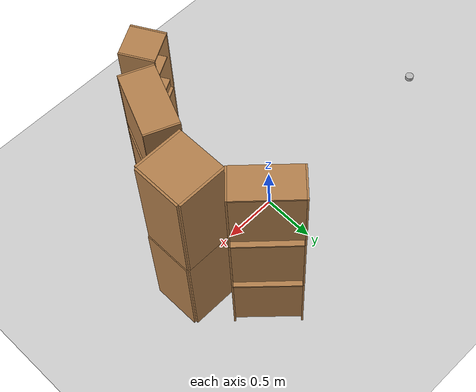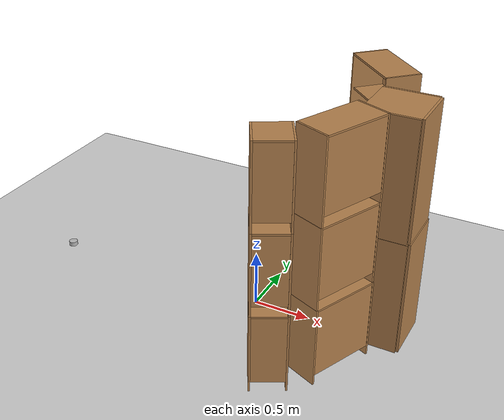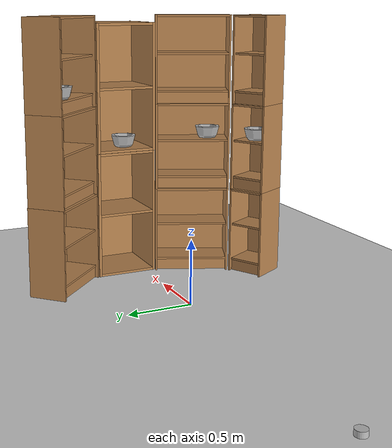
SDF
<sdf version="1.6">
 <world name="default">
  <light name="sun" type="directional">
   <pose>0 0 10 0 -0 0</pose>
   <diffuse>0.8 0.8 0.8 1</diffuse>
   <specular>0.2 0.2 0.2 1</specular>
   <attenuation>
    <range>1000</range>
    <constant>0.9</constant>
    <linear>0.01</linear>
    <quadratic>0.001</quadratic>
   </attenuation>
   <direction>-0.5 0.1 -0.9</direction>
  </light>
  <physics name="dart_1ms" default="1" type="dart">
   <max_step_size>0.001</max_step_size>
   <real_time_factor>1</real_time_factor>
   <real_time_update_rate>1000</real_time_update_rate>
   <dart><solver><solver_type>pgs</solver_type></solver></dart>
  </physics>
  <physics name="dart_2ms" default="0" type="dart">
   <max_step_size>0.002</max_step_size>
   <real_time_factor>1</real_time_factor>
   <real_time_update_rate>500</real_time_update_rate>
   <dart><solver><solver_type>pgs</solver_type></solver></dart>
  </physics>
  <physics name="dart_3ms" default="0" type="dart">
   <max_step_size>0.003</max_step_size>
   <real_time_factor>1</real_time_factor>
   <real_time_update_rate>333</real_time_update_rate>
   <dart><solver><solver_type>pgs</solver_type></solver></dart>
  </physics>
  <physics name="ode_1ms" default="0" type="ode">
   <max_step_size>0.001</max_step_size>
   <real_time_factor>1</real_time_factor>
   <real_time_update_rate>1000</real_time_update_rate>
  </physics>
  <physics name="ode_2ms" default="0" type="ode">
   <max_step_size>0.002</max_step_size>
   <real_time_factor>1</real_time_factor>
   <real_time_update_rate>500</real_time_update_rate>
  </physics>
  <physics name="ode_3ms" default="0" type="ode">
   <max_step_size>0.003</max_step_size>
   <real_time_factor>1</real_time_factor>
   <real_time_update_rate>333</real_time_update_rate>
  </physics>
  <model name="ground_plane">
   <static>1</static>
   <link name="link">
    <collision name="collision">
     <geometry><plane><normal>0 0 1</normal><size>100 100</size></plane></geometry>
     <surface><friction><ode><mu>100</mu><mu2>50</mu2></ode></friction></surface>
    </collision>
    <visual name="visual">
     <cast_shadows>0</cast_shadows>
     <geometry><plane><normal>0 0 1</normal><size>100 100</size></plane></geometry>
     <material>
      <script><uri>file://media/materials/scripts/gazebo.material</uri><name>Gazebo/Grey</name></script>
     </material>
    </visual>
   </link>
  </model>
  <gravity>0 0 -9.8</gravity>
  <magnetic_field>6e-06 2.3e-05 -4.2e-05</magnetic_field>
  <atmosphere type="adiabatic"/>
  <scene><ambient>0.4 0.4 0.4 1</ambient><background>0.7 0.7 0.7 1</background><shadows>1</shadows></scene>
  <spherical_coordinates>
   <surface_model>EARTH_WGS84</surface_model>
   <latitude_deg>0</latitude_deg>
   <longitude_deg>0</longitude_deg>
   <elevation>0</elevation>
   <heading_deg>0</heading_deg>
  </spherical_coordinates>
  <model name="jar_lid">
   <link name="link">
    <inertial>
     <mass>0.04</mass>
     <inertia><ixx>0.00015</ixx><ixy>0</ixy><ixz>0</ixz><iyy>0.00015</iyy><iyz>0</iyz><izz>5e-05</izz></inertia>
    </inertial>
    <collision name="surface">
     <geometry><cylinder><radius>0.04</radius><length>0.04</length></cylinder></geometry>
    </collision>
    <visual name="surface">
     <geometry><cylinder><radius>0.04</radius><length>0.04</length></cylinder></geometry>
    </visual>
   </link>
   <pose>-2 1e-06 0.019995 1.2e-05 1.2e-05 -4.3e-05</pose>
  </model>
  <model name="cabinet">
   <static>1</static>
   <link name="cabinet_bottom_plate">
    <inertial>
     <pose>0 0 -1 0 -0 0</pose>
     <inertia><ixx>2.05</ixx><ixy>0</ixy><ixz>0</ixz><iyy>2.05</iyy><iyz>0</iyz><izz>2.05</izz></inertia>
     <mass>25</mass>
    </inertial>
    <collision name="cabinet_bottom_plate_geom">
     <pose>0 0 0.01 0 -0 0</pose>
     <geometry><box><size>0.45 0.45 0.02</size></box></geometry>
    </collision>
    <visual name="cabinet_bottom_plate_geom_visual">
     <pose>0 0 0.01 0 -0 0</pose>
     <geometry><box><size>0.45 0.45 0.02</size></box></geometry>
     <material>
      <script><uri>file://media/materials/scripts/gazebo.material</uri><name>Gazebo/Wood</name></script>
     </material>
    </visual>
    <collision name="cabinet_bottom_plate_geom_cabinet_back_plate">
     <pose>0.235 0 0.51 0 -0 0</pose>
     <geometry><box><size>0.02 0.45 1.02</size></box></geometry>
    </collision>
    <visual name="cabinet_bottom_plate_geom_cabinet_back_plate_visual">
     <pose>0.235 0 0.51 0 -0 0</pose>
     <geometry><box><size>0.02 0.45 1.02</size></box></geometry>
     <material>
      <script><uri>file://media/materials/scripts/gazebo.material</uri><name>Gazebo/Wood</name></script>
     </material>
    </visual>
    <collision name="cabinet_bottom_plate_geom_cabinet_left_plate">
     <pose>0 0.235 0.51 0 -0 0</pose>
     <geometry><box><size>0.45 0.02 1.02</size></box></geometry>
    </collision>
    <visual name="cabinet_bottom_plate_geom_cabinet_left_plate_visual">
     <pose>0 0.235 0.51 0 -0 0</pose>
     <geometry><box><size>0.45 0.02 1.02</size></box></geometry>
     <material>
      <script><uri>file://media/materials/scripts/gazebo.material</uri><name>Gazebo/Wood</name></script>
     </material>
    </visual>
    <collision name="cabinet_bottom_plate_geom_cabinet_middle_plate">
     <pose>0 0 0.51 0 -0 0</pose>
     <geometry><box><size>0.45 0.45 0.02</size></box></geometry>
    </collision>
    <visual name="cabinet_bottom_plate_geom_cabinet_middle_plate_visual">
     <pose>0 0 0.51 0 -0 0</pose>
     <geometry><box><size>0.45 0.45 0.02</size></box></geometry>
     <material>
      <script><uri>file://media/materials/scripts/gazebo.material</uri><name>Gazebo/Wood</name></script>
     </material>
    </visual>
    <collision name="cabinet_bottom_plate_geom_cabinet_right_plate">
     <pose>0 -0.235 0.51 0 -0 0</pose>
     <geometry><box><size>0.45 0.02 1.02</size></box></geometry>
    </collision>
    <visual name="cabinet_bottom_plate_geom_cabinet_right_plate_visual">
     <pose>0 -0.235 0.51 0 -0 0</pose>
     <geometry><box><size>0.45 0.02 1.02</size></box></geometry>
     <material>
      <script><uri>file://media/materials/scripts/gazebo.material</uri><name>Gazebo/Wood</name></script>
     </material>
    </visual>
    <collision name="cabinet_bottom_plate_geom_cabinet_top_plate">
     <pose>0 0 1.01 0 -0 0</pose>
     <geometry><box><size>0.45 0.45 0.02</size></box></geometry>
    </collision>
    <visual name="cabinet_bottom_plate_geom_cabinet_top_plate_visual">
     <pose>0 0 1.01 0 -0 0</pose>
     <geometry><box><size>0.45 0.45 0.02</size></box></geometry>
     <material>
      <script><uri>file://media/materials/scripts/gazebo.material</uri><name>Gazebo/Wood</name></script>
     </material>
    </visual>
   </link>
   <pose>1.07844 0.162029 0 0 -0 0</pose>
  </model>
  <model name="cabinet_no_door_narrow">
   <static>1</static>
   <link name="cabinet">
    <pose>0 0 0.35 0 -0 0</pose>
    <inertial>
     <mass>16</mass>
     <inertia><ixx>1.59</ixx><ixy>0</ixy><ixz>0</ixz><iyy>1.12</iyy><iyz>0</iyz><izz>0.91</izz></inertia>
    </inertial>
    <collision name="back">
     <pose>-0.14 0 0.035 0 -0 0</pose>
     <geometry><box><size>0.015 0.285 0.6</size></box></geometry>
    </collision>
    <visual name="visual1">
     <pose>-0.14 0 0.035 0 -0 0</pose>
     <geometry><box><size>0.015 0.285 0.6</size></box></geometry>
     <material>
      <script><uri>file://media/materials/scripts/gazebo.material</uri><name>Gazebo/Wood</name></script>
     </material>
    </visual>
    <collision name="left_side">
     <pose>0 -0.1425 0 0 -0 0</pose>
     <geometry><box><size>0.3 0.015 0.7</size></box></geometry>
    </collision>
    <visual name="visual2">
     <pose>0 -0.1425 0 0 -0 0</pose>
     <geometry><box><size>0.3 0.015 0.7</size></box></geometry>
     <material>
      <script><uri>file://media/materials/scripts/gazebo.material</uri><name>Gazebo/Wood</name></script>
     </material>
    </visual>
    <collision name="right_side">
     <pose>0 0.1425 0 0 -0 0</pose>
     <geometry><box><size>0.3 0.015 0.7</size></box></geometry>
    </collision>
    <visual name="visual3">
     <pose>0 0.1425 0 0 -0 0</pose>
     <geometry><box><size>0.3 0.015 0.7</size></box></geometry>
     <material>
      <script><uri>file://media/materials/scripts/gazebo.material</uri><name>Gazebo/Wood</name></script>
     </material>
    </visual>
    <collision name="bottom">
     <pose>-0.002 0 -0.2525 0 -0 0</pose>
     <geometry><box><size>0.26 0.27 0.015</size></box></geometry>
    </collision>
    <visual name="visual4">
     <pose>-0.002 0 -0.2525 0 -0 0</pose>
     <geometry><box><size>0.26 0.27 0.015</size></box></geometry>
     <material>
      <script><uri>file://media/materials/scripts/gazebo.material</uri><name>Gazebo/Wood</name></script>
     </material>
    </visual>
    <collision name="top">
     <pose>0 0 0.3425 0 -0 0</pose>
     <geometry><box><size>0.3 0.27 0.015</size></box></geometry>
    </collision>
    <visual name="visual5">
     <pose>0 0 0.3425 0 -0 0</pose>
     <geometry><box><size>0.3 0.27 0.015</size></box></geometry>
     <material>
      <script><uri>file://media/materials/scripts/gazebo.material</uri><name>Gazebo/Wood</name></script>
     </material>
    </visual>
    <collision name="middle_shelf">
     <pose>-0.002 0 0.0475 0 -0 0</pose>
     <geometry><box><size>0.26 0.27 0.015</size></box></geometry>
    </collision>
    <visual name="visual6">
     <pose>-0.002 0 0.0475 0 -0 0</pose>
     <geometry><box><size>0.26 0.27 0.015</size></box></geometry>
     <material>
      <script><uri>file://media/materials/scripts/gazebo.material</uri><name>Gazebo/Wood</name></script>
     </material>
    </visual>
    <collision name="low_front">
     <pose>0.115 0 -0.3025 0 -0 0</pose>
     <geometry><box><size>0.015 0.27 0.09</size></box></geometry>
    </collision>
    <visual name="visual7">
     <pose>0.115 0 -0.3025 0 -0 0</pose>
     <geometry><box><size>0.015 0.27 0.09</size></box></geometry>
     <material>
      <script><uri>file://media/materials/scripts/gazebo.material</uri><name>Gazebo/Wood</name></script>
     </material>
    </visual>
   </link>
   <pose>0.528097 -0.841149 1e-06 -6e-06 4e-06 2.07278</pose>
  </model>
  <model name="cabinet_no_door_0">
   <static>1</static>
   <link name="cabinet">
    <pose>0 0 0.35 0 -0 0</pose>
    <inertial>
     <mass>16</mass>
     <inertia><ixx>1.59</ixx><ixy>0</ixy><ixz>0</ixz><iyy>1.12</iyy><iyz>0</iyz><izz>0.91</izz></inertia>
    </inertial>
    <collision name="back">
     <pose>-0.14 0 0.035 0 -0 0</pose>
     <geometry><box><size>0.015 0.585 0.6</size></box></geometry>
    </collision>
    <visual name="visual1">
     <pose>-0.14 0 0.035 0 -0 0</pose>
     <geometry><box><size>0.015 0.585 0.6</size></box></geometry>
     <material>
      <script><uri>file://media/materials/scripts/gazebo.material</uri><name>Gazebo/Wood</name></script>
     </material>
    </visual>
    <collision name="left_side">
     <pose>0 -0.2925 0 0 -0 0</pose>
     <geometry><box><size>0.3 0.015 0.7</size></box></geometry>
    </collision>
    <visual name="visual2">
     <pose>0 -0.2925 0 0 -0 0</pose>
     <geometry><box><size>0.3 0.015 0.7</size></box></geometry>
     <material>
      <script><uri>file://media/materials/scripts/gazebo.material</uri><name>Gazebo/Wood</name></script>
     </material>
    </visual>
    <collision name="right_side">
     <pose>0 0.2925 0 0 -0 0</pose>
     <geometry><box><size>0.3 0.015 0.7</size></box></geometry>
    </collision>
    <visual name="visual3">
     <pose>0 0.2925 0 0 -0 0</pose>
     <geometry><box><size>0.3 0.015 0.7</size></box></geometry>
     <material>
      <script><uri>file://media/materials/scripts/gazebo.material</uri><name>Gazebo/Wood</name></script>
     </material>
    </visual>
    <collision name="bottom">
     <pose>-0.002 0 -0.2525 0 -0 0</pose>
     <geometry><box><size>0.26 0.57 0.015</size></box></geometry>
    </collision>
    <visual name="visual4">
     <pose>-0.002 0 -0.2525 0 -0 0</pose>
     <geometry><box><size>0.26 0.57 0.015</size></box></geometry>
     <material>
      <script><uri>file://media/materials/scripts/gazebo.material</uri><name>Gazebo/Wood</name></script>
     </material>
    </visual>
    <collision name="top">
     <pose>0 0 0.3425 0 -0 0</pose>
     <geometry><box><size>0.3 0.57 0.015</size></box></geometry>
    </collision>
    <visual name="visual5">
     <pose>0 0 0.3425 0 -0 0</pose>
     <geometry><box><size>0.3 0.57 0.015</size></box></geometry>
     <material>
      <script><uri>file://media/materials/scripts/gazebo.material</uri><name>Gazebo/Wood</name></script>
     </material>
    </visual>
    <collision name="middle_shelf">
     <pose>-0.002 0 0.0475 0 -0 0</pose>
     <geometry><box><size>0.26 0.57 0.015</size></box></geometry>
    </collision>
    <visual name="visual6">
     <pose>-0.002 0 0.0475 0 -0 0</pose>
     <geometry><box><size>0.26 0.57 0.015</size></box></geometry>
     <material>
      <script><uri>file://media/materials/scripts/gazebo.material</uri><name>Gazebo/Wood</name></script>
     </material>
    </visual>
    <collision name="low_front">
     <pose>0.115 0 -0.3025 0 -0 0</pose>
     <geometry><box><size>0.015 0.57 0.09</size></box></geometry>
    </collision>
    <visual name="visual7">
     <pose>0.115 0 -0.3025 0 -0 0</pose>
     <geometry><box><size>0.015 0.57 0.09</size></box></geometry>
     <material>
      <script><uri>file://media/materials/scripts/gazebo.material</uri><name>Gazebo/Wood</name></script>
     </material>
    </visual>
   </link>
   <pose>0.752417 0.729343 -5e-06 -1e-06 -2.9e-05 -2.34966</pose>
  </model>
  <model name="cabinet_no_door">
   <static>1</static>
   <link name="cabinet">
    <pose>0 0 0.35 0 -0 0</pose>
    <inertial>
     <mass>16</mass>
     <inertia><ixx>1.59</ixx><ixy>0</ixy><ixz>0</ixz><iyy>1.12</iyy><iyz>0</iyz><izz>0.91</izz></inertia>
    </inertial>
    <collision name="back">
     <pose>-0.14 0 0.035 0 -0 0</pose>
     <geometry><box><size>0.015 0.585 0.6</size></box></geometry>
    </collision>
    <visual name="visual1">
     <pose>-0.14 0 0.035 0 -0 0</pose>
     <geometry><box><size>0.015 0.585 0.6</size></box></geometry>
     <material>
      <script><uri>file://media/materials/scripts/gazebo.material</uri><name>Gazebo/Wood</name></script>
     </material>
    </visual>
    <collision name="left_side">
     <pose>0 -0.2925 0 0 -0 0</pose>
     <geometry><box><size>0.3 0.015 0.7</size></box></geometry>
    </collision>
    <visual name="visual2">
     <pose>0 -0.2925 0 0 -0 0</pose>
     <geometry><box><size>0.3 0.015 0.7</size></box></geometry>
     <material>
      <script><uri>file://media/materials/scripts/gazebo.material</uri><name>Gazebo/Wood</name></script>
     </material>
    </visual>
    <collision name="right_side">
     <pose>0 0.2925 0 0 -0 0</pose>
     <geometry><box><size>0.3 0.015 0.7</size></box></geometry>
    </collision>
    <visual name="visual3">
     <pose>0 0.2925 0 0 -0 0</pose>
     <geometry><box><size>0.3 0.015 0.7</size></box></geometry>
     <material>
      <script><uri>file://media/materials/scripts/gazebo.material</uri><name>Gazebo/Wood</name></script>
     </material>
    </visual>
    <collision name="bottom">
     <pose>-0.002 0 -0.2525 0 -0 0</pose>
     <geometry><box><size>0.26 0.57 0.015</size></box></geometry>
    </collision>
    <visual name="visual4">
     <pose>-0.002 0 -0.2525 0 -0 0</pose>
     <geometry><box><size>0.26 0.57 0.015</size></box></geometry>
     <material>
      <script><uri>file://media/materials/scripts/gazebo.material</uri><name>Gazebo/Wood</name></script>
     </material>
    </visual>
    <collision name="top">
     <pose>0 0 0.3425 0 -0 0</pose>
     <geometry><box><size>0.3 0.57 0.015</size></box></geometry>
    </collision>
    <visual name="visual5">
     <pose>0 0 0.3425 0 -0 0</pose>
     <geometry><box><size>0.3 0.57 0.015</size></box></geometry>
     <material>
      <script><uri>file://media/materials/scripts/gazebo.material</uri><name>Gazebo/Wood</name></script>
     </material>
    </visual>
    <collision name="middle_shelf">
     <pose>-0.002 0 0.0475 0 -0 0</pose>
     <geometry><box><size>0.26 0.57 0.015</size></box></geometry>
    </collision>
    <visual name="visual6">
     <pose>-0.002 0 0.0475 0 -0 0</pose>
     <geometry><box><size>0.26 0.57 0.015</size></box></geometry>
     <material>
      <script><uri>file://media/materials/scripts/gazebo.material</uri><name>Gazebo/Wood</name></script>
     </material>
    </visual>
    <collision name="low_front">
     <pose>0.115 0 -0.3025 0 -0 0</pose>
     <geometry><box><size>0.015 0.57 0.09</size></box></geometry>
    </collision>
    <visual name="visual7">
     <pose>0.115 0 -0.3025 0 -0 0</pose>
     <geometry><box><size>0.015 0.57 0.09</size></box></geometry>
     <material>
      <script><uri>file://media/materials/scripts/gazebo.material</uri><name>Gazebo/Wood</name></script>
     </material>
    </visual>
   </link>
   <pose>0.751373 0.728135 0.69999 1e-05 1.1e-05 -2.34054</pose>
  </model>
  <model name="cabinet_no_door_1">
   <static>1</static>
   <link name="cabinet">
    <pose>0 0 0.35 0 -0 0</pose>
    <inertial>
     <mass>16</mass>
     <inertia><ixx>1.59</ixx><ixy>0</ixy><ixz>0</ixz><iyy>1.12</iyy><iyz>0</iyz><izz>0.91</izz></inertia>
    </inertial>
    <collision name="back">
     <pose>-0.14 0 0.035 0 -0 0</pose>
     <geometry><box><size>0.015 0.585 0.6</size></box></geometry>
    </collision>
    <visual name="visual1">
     <pose>-0.14 0 0.035 0 -0 0</pose>
     <geometry><box><size>0.015 0.585 0.6</size></box></geometry>
     <material>
      <script><uri>file://media/materials/scripts/gazebo.material</uri><name>Gazebo/Wood</name></script>
     </material>
    </visual>
    <collision name="left_side">
     <pose>0 -0.2925 0 0 -0 0</pose>
     <geometry><box><size>0.3 0.015 0.7</size></box></geometry>
    </collision>
    <visual name="visual2">
     <pose>0 -0.2925 0 0 -0 0</pose>
     <geometry><box><size>0.3 0.015 0.7</size></box></geometry>
     <material>
      <script><uri>file://media/materials/scripts/gazebo.material</uri><name>Gazebo/Wood</name></script>
     </material>
    </visual>
    <collision name="right_side">
     <pose>0 0.2925 0 0 -0 0</pose>
     <geometry><box><size>0.3 0.015 0.7</size></box></geometry>
    </collision>
    <visual name="visual3">
     <pose>0 0.2925 0 0 -0 0</pose>
     <geometry><box><size>0.3 0.015 0.7</size></box></geometry>
     <material>
      <script><uri>file://media/materials/scripts/gazebo.material</uri><name>Gazebo/Wood</name></script>
     </material>
    </visual>
    <collision name="bottom">
     <pose>-0.002 0 -0.2525 0 -0 0</pose>
     <geometry><box><size>0.26 0.57 0.015</size></box></geometry>
    </collision>
    <visual name="visual4">
     <pose>-0.002 0 -0.2525 0 -0 0</pose>
     <geometry><box><size>0.26 0.57 0.015</size></box></geometry>
     <material>
      <script><uri>file://media/materials/scripts/gazebo.material</uri><name>Gazebo/Wood</name></script>
     </material>
    </visual>
    <collision name="top">
     <pose>0 0 0.3425 0 -0 0</pose>
     <geometry><box><size>0.3 0.57 0.015</size></box></geometry>
    </collision>
    <visual name="visual5">
     <pose>0 0 0.3425 0 -0 0</pose>
     <geometry><box><size>0.3 0.57 0.015</size></box></geometry>
     <material>
      <script><uri>file://media/materials/scripts/gazebo.material</uri><name>Gazebo/Wood</name></script>
     </material>
    </visual>
    <collision name="middle_shelf">
     <pose>-0.002 0 0.0475 0 -0 0</pose>
     <geometry><box><size>0.26 0.57 0.015</size></box></geometry>
    </collision>
    <visual name="visual6">
     <pose>-0.002 0 0.0475 0 -0 0</pose>
     <geometry><box><size>0.26 0.57 0.015</size></box></geometry>
     <material>
      <script><uri>file://media/materials/scripts/gazebo.material</uri><name>Gazebo/Wood</name></script>
     </material>
    </visual>
    <collision name="low_front">
     <pose>0.115 0 -0.3025 0 -0 0</pose>
     <geometry><box><size>0.015 0.57 0.09</size></box></geometry>
    </collision>
    <visual name="visual7">
     <pose>0.115 0 -0.3025 0 -0 0</pose>
     <geometry><box><size>0.015 0.57 0.09</size></box></geometry>
     <material>
      <script><uri>file://media/materials/scripts/gazebo.material</uri><name>Gazebo/Wood</name></script>
     </material>
    </visual>
   </link>
   <pose>0.85236 -0.413155 -4e-06 -1.7e-05 -5e-06 2.74167</pose>
  </model>
  <model name="cabinet_clone">
   <static>1</static>
   <link name="cabinet_bottom_plate">
    <inertial>
     <pose>0 0 -1 0 -0 0</pose>
     <inertia><ixx>2.05</ixx><ixy>0</ixy><ixz>0</ixz><iyy>2.05</iyy><iyz>0</iyz><izz>2.05</izz></inertia>
     <mass>25</mass>
    </inertial>
    <collision name="cabinet_bottom_plate_geom">
     <pose>0 0 0.01 0 -0 0</pose>
     <geometry><box><size>0.45 0.45 0.02</size></box></geometry>
    </collision>
    <visual name="cabinet_bottom_plate_geom_visual">
     <pose>0 0 0.01 0 -0 0</pose>
     <geometry><box><size>0.45 0.45 0.02</size></box></geometry>
     <material>
      <script><uri>file://media/materials/scripts/gazebo.material</uri><name>Gazebo/Wood</name></script>
     </material>
    </visual>
    <collision name="cabinet_bottom_plate_geom_cabinet_back_plate">
     <pose>0.235 0 0.51 0 -0 0</pose>
     <geometry><box><size>0.02 0.45 1.02</size></box></geometry>
    </collision>
    <visual name="cabinet_bottom_plate_geom_cabinet_back_plate_visual">
     <pose>0.235 0 0.51 0 -0 0</pose>
     <geometry><box><size>0.02 0.45 1.02</size></box></geometry>
     <material>
      <script><uri>file://media/materials/scripts/gazebo.material</uri><name>Gazebo/Wood</name></script>
     </material>
    </visual>
    <collision name="cabinet_bottom_plate_geom_cabinet_left_plate">
     <pose>0 0.235 0.51 0 -0 0</pose>
     <geometry><box><size>0.45 0.02 1.02</size></box></geometry>
    </collision>
    <visual name="cabinet_bottom_plate_geom_cabinet_left_plate_visual">
     <pose>0 0.235 0.51 0 -0 0</pose>
     <geometry><box><size>0.45 0.02 1.02</size></box></geometry>
     <material>
      <script><uri>file://media/materials/scripts/gazebo.material</uri><name>Gazebo/Wood</name></script>
     </material>
    </visual>
    <collision name="cabinet_bottom_plate_geom_cabinet_middle_plate">
     <pose>0 0 0.51 0 -0 0</pose>
     <geometry><box><size>0.45 0.45 0.02</size></box></geometry>
    </collision>
    <visual name="cabinet_bottom_plate_geom_cabinet_middle_plate_visual">
     <pose>0 0 0.51 0 -0 0</pose>
     <geometry><box><size>0.45 0.45 0.02</size></box></geometry>
     <material>
      <script><uri>file://media/materials/scripts/gazebo.material</uri><name>Gazebo/Wood</name></script>
     </material>
    </visual>
    <collision name="cabinet_bottom_plate_geom_cabinet_right_plate">
     <pose>0 -0.235 0.51 0 -0 0</pose>
     <geometry><box><size>0.45 0.02 1.02</size></box></geometry>
    </collision>
    <visual name="cabinet_bottom_plate_geom_cabinet_right_plate_visual">
     <pose>0 -0.235 0.51 0 -0 0</pose>
     <geometry><box><size>0.45 0.02 1.02</size></box></geometry>
     <material>
      <script><uri>file://media/materials/scripts/gazebo.material</uri><name>Gazebo/Wood</name></script>
     </material>
    </visual>
    <collision name="cabinet_bottom_plate_geom_cabinet_top_plate">
     <pose>0 0 1.01 0 -0 0</pose>
     <geometry><box><size>0.45 0.45 0.02</size></box></geometry>
    </collision>
    <visual name="cabinet_bottom_plate_geom_cabinet_top_plate_visual">
     <pose>0 0 1.01 0 -0 0</pose>
     <geometry><box><size>0.45 0.45 0.02</size></box></geometry>
     <material>
      <script><uri>file://media/materials/scripts/gazebo.material</uri><name>Gazebo/Wood</name></script>
     </material>
    </visual>
   </link>
   <pose>1.07061 0.162616 1.02209 0 -0 0</pose>
  </model>
  <model name="cabinet_no_door_1_clone">
   <static>1</static>
   <link name="cabinet">
    <pose>0 0 0.35 0 -0 0</pose>
    <inertial>
     <mass>16</mass>
     <inertia><ixx>1.59</ixx><ixy>0</ixy><ixz>0</ixz><iyy>1.12</iyy><iyz>0</iyz><izz>0.91</izz></inertia>
    </inertial>
    <collision name="back">
     <pose>-0.14 0 0.035 0 -0 0</pose>
     <geometry><box><size>0.015 0.585 0.6</size></box></geometry>
    </collision>
    <visual name="visual1">
     <pose>-0.14 0 0.035 0 -0 0</pose>
     <geometry><box><size>0.015 0.585 0.6</size></box></geometry>
     <material>
      <script><uri>file://media/materials/scripts/gazebo.material</uri><name>Gazebo/Wood</name></script>
     </material>
    </visual>
    <collision name="left_side">
     <pose>0 -0.2925 0 0 -0 0</pose>
     <geometry><box><size>0.3 0.015 0.7</size></box></geometry>
    </collision>
    <visual name="visual2">
     <pose>0 -0.2925 0 0 -0 0</pose>
     <geometry><box><size>0.3 0.015 0.7</size></box></geometry>
     <material>
      <script><uri>file://media/materials/scripts/gazebo.material</uri><name>Gazebo/Wood</name></script>
     </material>
    </visual>
    <collision name="right_side">
     <pose>0 0.2925 0 0 -0 0</pose>
     <geometry><box><size>0.3 0.015 0.7</size></box></geometry>
    </collision>
    <visual name="visual3">
     <pose>0 0.2925 0 0 -0 0</pose>
     <geometry><box><size>0.3 0.015 0.7</size></box></geometry>
     <material>
      <script><uri>file://media/materials/scripts/gazebo.material</uri><name>Gazebo/Wood</name></script>
     </material>
    </visual>
    <collision name="bottom">
     <pose>-0.002 0 -0.2525 0 -0 0</pose>
     <geometry><box><size>0.26 0.57 0.015</size></box></geometry>
    </collision>
    <visual name="visual4">
     <pose>-0.002 0 -0.2525 0 -0 0</pose>
     <geometry><box><size>0.26 0.57 0.015</size></box></geometry>
     <material>
      <script><uri>file://media/materials/scripts/gazebo.material</uri><name>Gazebo/Wood</name></script>
     </material>
    </visual>
    <collision name="top">
     <pose>0 0 0.3425 0 -0 0</pose>
     <geometry><box><size>0.3 0.57 0.015</size></box></geometry>
    </collision>
    <visual name="visual5">
     <pose>0 0 0.3425 0 -0 0</pose>
     <geometry><box><size>0.3 0.57 0.015</size></box></geometry>
     <material>
      <script><uri>file://media/materials/scripts/gazebo.material</uri><name>Gazebo/Wood</name></script>
     </material>
    </visual>
    <collision name="middle_shelf">
     <pose>-0.002 0 0.0475 0 -0 0</pose>
     <geometry><box><size>0.26 0.57 0.015</size></box></geometry>
    </collision>
    <visual name="visual6">
     <pose>-0.002 0 0.0475 0 -0 0</pose>
     <geometry><box><size>0.26 0.57 0.015</size></box></geometry>
     <material>
      <script><uri>file://media/materials/scripts/gazebo.material</uri><name>Gazebo/Wood</name></script>
     </material>
    </visual>
    <collision name="low_front">
     <pose>0.115 0 -0.3025 0 -0 0</pose>
     <geometry><box><size>0.015 0.57 0.09</size></box></geometry>
    </collision>
    <visual name="visual7">
     <pose>0.115 0 -0.3025 0 -0 0</pose>
     <geometry><box><size>0.015 0.57 0.09</size></box></geometry>
     <material>
      <script><uri>file://media/materials/scripts/gazebo.material</uri><name>Gazebo/Wood</name></script>
     </material>
    </visual>
   </link>
   <pose>0.848773 -0.411479 1.39998 5e-05 -2e-06 2.74209</pose>
  </model>
  <model name="cabinet_no_door_clone">
   <static>1</static>
   <link name="cabinet">
    <pose>0 0 0.35 0 -0 0</pose>
    <inertial>
     <mass>16</mass>
     <inertia><ixx>1.59</ixx><ixy>0</ixy><ixz>0</ixz><iyy>1.12</iyy><iyz>0</iyz><izz>0.91</izz></inertia>
    </inertial>
    <collision name="back">
     <pose>-0.14 0 0.035 0 -0 0</pose>
     <geometry><box><size>0.015 0.585 0.6</size></box></geometry>
    </collision>
    <visual name="visual1">
     <pose>-0.14 0 0.035 0 -0 0</pose>
     <geometry><box><size>0.015 0.585 0.6</size></box></geometry>
     <material>
      <script><uri>file://media/materials/scripts/gazebo.material</uri><name>Gazebo/Wood</name></script>
     </material>
    </visual>
    <collision name="left_side">
     <pose>0 -0.2925 0 0 -0 0</pose>
     <geometry><box><size>0.3 0.015 0.7</size></box></geometry>
    </collision>
    <visual name="visual2">
     <pose>0 -0.2925 0 0 -0 0</pose>
     <geometry><box><size>0.3 0.015 0.7</size></box></geometry>
     <material>
      <script><uri>file://media/materials/scripts/gazebo.material</uri><name>Gazebo/Wood</name></script>
     </material>
    </visual>
    <collision name="right_side">
     <pose>0 0.2925 0 0 -0 0</pose>
     <geometry><box><size>0.3 0.015 0.7</size></box></geometry>
    </collision>
    <visual name="visual3">
     <pose>0 0.2925 0 0 -0 0</pose>
     <geometry><box><size>0.3 0.015 0.7</size></box></geometry>
     <material>
      <script><uri>file://media/materials/scripts/gazebo.material</uri><name>Gazebo/Wood</name></script>
     </material>
    </visual>
    <collision name="bottom">
     <pose>-0.002 0 -0.2525 0 -0 0</pose>
     <geometry><box><size>0.26 0.57 0.015</size></box></geometry>
    </collision>
    <visual name="visual4">
     <pose>-0.002 0 -0.2525 0 -0 0</pose>
     <geometry><box><size>0.26 0.57 0.015</size></box></geometry>
     <material>
      <script><uri>file://media/materials/scripts/gazebo.material</uri><name>Gazebo/Wood</name></script>
     </material>
    </visual>
    <collision name="top">
     <pose>0 0 0.3425 0 -0 0</pose>
     <geometry><box><size>0.3 0.57 0.015</size></box></geometry>
    </collision>
    <visual name="visual5">
     <pose>0 0 0.3425 0 -0 0</pose>
     <geometry><box><size>0.3 0.57 0.015</size></box></geometry>
     <material>
      <script><uri>file://media/materials/scripts/gazebo.material</uri><name>Gazebo/Wood</name></script>
     </material>
    </visual>
    <collision name="middle_shelf">
     <pose>-0.002 0 0.0475 0 -0 0</pose>
     <geometry><box><size>0.26 0.57 0.015</size></box></geometry>
    </collision>
    <visual name="visual6">
     <pose>-0.002 0 0.0475 0 -0 0</pose>
     <geometry><box><size>0.26 0.57 0.015</size></box></geometry>
     <material>
      <script><uri>file://media/materials/scripts/gazebo.material</uri><name>Gazebo/Wood</name></script>
     </material>
    </visual>
    <collision name="low_front">
     <pose>0.115 0 -0.3025 0 -0 0</pose>
     <geometry><box><size>0.015 0.57 0.09</size></box></geometry>
    </collision>
    <visual name="visual7">
     <pose>0.115 0 -0.3025 0 -0 0</pose>
     <geometry><box><size>0.015 0.57 0.09</size></box></geometry>
     <material>
      <script><uri>file://media/materials/scripts/gazebo.material</uri><name>Gazebo/Wood</name></script>
     </material>
    </visual>
   </link>
   <pose>0.749073 0.728707 1.4 2e-05 5e-06 -2.34084</pose>
  </model>
  <model name="cabinet_no_door_narrow_clone">
   <static>1</static>
   <link name="cabinet">
    <pose>0 0 0.35 0 -0 0</pose>
    <inertial>
     <mass>16</mass>
     <inertia><ixx>1.59</ixx><ixy>0</ixy><ixz>0</ixz><iyy>1.12</iyy><iyz>0</iyz><izz>0.91</izz></inertia>
    </inertial>
    <collision name="back">
     <pose>-0.14 0 0.035 0 -0 0</pose>
     <geometry><box><size>0.015 0.285 0.6</size></box></geometry>
    </collision>
    <visual name="visual1">
     <pose>-0.14 0 0.035 0 -0 0</pose>
     <geometry><box><size>0.015 0.285 0.6</size></box></geometry>
     <material>
      <script><uri>file://media/materials/scripts/gazebo.material</uri><name>Gazebo/Wood</name></script>
     </material>
    </visual>
    <collision name="left_side">
     <pose>0 -0.1425 0 0 -0 0</pose>
     <geometry><box><size>0.3 0.015 0.7</size></box></geometry>
    </collision>
    <visual name="visual2">
     <pose>0 -0.1425 0 0 -0 0</pose>
     <geometry><box><size>0.3 0.015 0.7</size></box></geometry>
     <material>
      <script><uri>file://media/materials/scripts/gazebo.material</uri><name>Gazebo/Wood</name></script>
     </material>
    </visual>
    <collision name="right_side">
     <pose>0 0.1425 0 0 -0 0</pose>
     <geometry><box><size>0.3 0.015 0.7</size></box></geometry>
    </collision>
    <visual name="visual3">
     <pose>0 0.1425 0 0 -0 0</pose>
     <geometry><box><size>0.3 0.015 0.7</size></box></geometry>
     <material>
      <script><uri>file://media/materials/scripts/gazebo.material</uri><name>Gazebo/Wood</name></script>
     </material>
    </visual>
    <collision name="bottom">
     <pose>-0.002 0 -0.2525 0 -0 0</pose>
     <geometry><box><size>0.26 0.27 0.015</size></box></geometry>
    </collision>
    <visual name="visual4">
     <pose>-0.002 0 -0.2525 0 -0 0</pose>
     <geometry><box><size>0.26 0.27 0.015</size></box></geometry>
     <material>
      <script><uri>file://media/materials/scripts/gazebo.material</uri><name>Gazebo/Wood</name></script>
     </material>
    </visual>
    <collision name="top">
     <pose>0 0 0.3425 0 -0 0</pose>
     <geometry><box><size>0.3 0.27 0.015</size></box></geometry>
    </collision>
    <visual name="visual5">
     <pose>0 0 0.3425 0 -0 0</pose>
     <geometry><box><size>0.3 0.27 0.015</size></box></geometry>
     <material>
      <script><uri>file://media/materials/scripts/gazebo.material</uri><name>Gazebo/Wood</name></script>
     </material>
    </visual>
    <collision name="middle_shelf">
     <pose>-0.002 0 0.0475 0 -0 0</pose>
     <geometry><box><size>0.26 0.27 0.015</size></box></geometry>
    </collision>
    <visual name="visual6">
     <pose>-0.002 0 0.0475 0 -0 0</pose>
     <geometry><box><size>0.26 0.27 0.015</size></box></geometry>
     <material>
      <script><uri>file://media/materials/scripts/gazebo.material</uri><name>Gazebo/Wood</name></script>
     </material>
    </visual>
    <collision name="low_front">
     <pose>0.115 0 -0.3025 0 -0 0</pose>
     <geometry><box><size>0.015 0.27 0.09</size></box></geometry>
    </collision>
    <visual name="visual7">
     <pose>0.115 0 -0.3025 0 -0 0</pose>
     <geometry><box><size>0.015 0.27 0.09</size></box></geometry>
     <material>
      <script><uri>file://media/materials/scripts/gazebo.material</uri><name>Gazebo/Wood</name></script>
     </material>
    </visual>
   </link>
   <pose>0.526096 -0.84059 0.7 -6e-06 -1.1e-05 2.07249</pose>
  </model>
  <model name="cabinet_no_door_narrow_clone_clone">
   <static>1</static>
   <link name="cabinet">
    <pose>0 0 0.35 0 -0 0</pose>
    <inertial>
     <mass>16</mass>
     <inertia><ixx>1.59</ixx><ixy>0</ixy><ixz>0</ixz><iyy>1.12</iyy><iyz>0</iyz><izz>0.91</izz></inertia>
    </inertial>
    <collision name="back">
     <pose>-0.14 0 0.035 0 -0 0</pose>
     <geometry><box><size>0.015 0.285 0.6</size></box></geometry>
    </collision>
    <visual name="visual1">
     <pose>-0.14 0 0.035 0 -0 0</pose>
     <geometry><box><size>0.015 0.285 0.6</size></box></geometry>
     <material>
      <script><uri>file://media/materials/scripts/gazebo.material</uri><name>Gazebo/Wood</name></script>
     </material>
    </visual>
    <collision name="left_side">
     <pose>0 -0.1425 0 0 -0 0</pose>
     <geometry><box><size>0.3 0.015 0.7</size></box></geometry>
    </collision>
    <visual name="visual2">
     <pose>0 -0.1425 0 0 -0 0</pose>
     <geometry><box><size>0.3 0.015 0.7</size></box></geometry>
     <material>
      <script><uri>file://media/materials/scripts/gazebo.material</uri><name>Gazebo/Wood</name></script>
     </material>
    </visual>
    <collision name="right_side">
     <pose>0 0.1425 0 0 -0 0</pose>
     <geometry><box><size>0.3 0.015 0.7</size></box></geometry>
    </collision>
    <visual name="visual3">
     <pose>0 0.1425 0 0 -0 0</pose>
     <geometry><box><size>0.3 0.015 0.7</size></box></geometry>
     <material>
      <script><uri>file://media/materials/scripts/gazebo.material</uri><name>Gazebo/Wood</name></script>
     </material>
    </visual>
    <collision name="bottom">
     <pose>-0.002 0 -0.2525 0 -0 0</pose>
     <geometry><box><size>0.26 0.27 0.015</size></box></geometry>
    </collision>
    <visual name="visual4">
     <pose>-0.002 0 -0.2525 0 -0 0</pose>
     <geometry><box><size>0.26 0.27 0.015</size></box></geometry>
     <material>
      <script><uri>file://media/materials/scripts/gazebo.material</uri><name>Gazebo/Wood</name></script>
     </material>
    </visual>
    <collision name="top">
     <pose>0 0 0.3425 0 -0 0</pose>
     <geometry><box><size>0.3 0.27 0.015</size></box></geometry>
    </collision>
    <visual name="visual5">
     <pose>0 0 0.3425 0 -0 0</pose>
     <geometry><box><size>0.3 0.27 0.015</size></box></geometry>
     <material>
      <script><uri>file://media/materials/scripts/gazebo.material</uri><name>Gazebo/Wood</name></script>
     </material>
    </visual>
    <collision name="middle_shelf">
     <pose>-0.002 0 0.0475 0 -0 0</pose>
     <geometry><box><size>0.26 0.27 0.015</size></box></geometry>
    </collision>
    <visual name="visual6">
     <pose>-0.002 0 0.0475 0 -0 0</pose>
     <geometry><box><size>0.26 0.27 0.015</size></box></geometry>
     <material>
      <script><uri>file://media/materials/scripts/gazebo.material</uri><name>Gazebo/Wood</name></script>
     </material>
    </visual>
    <collision name="low_front">
     <pose>0.115 0 -0.3025 0 -0 0</pose>
     <geometry><box><size>0.015 0.27 0.09</size></box></geometry>
    </collision>
    <visual name="visual7">
     <pose>0.115 0 -0.3025 0 -0 0</pose>
     <geometry><box><size>0.015 0.27 0.09</size></box></geometry>
     <material>
      <script><uri>file://media/materials/scripts/gazebo.material</uri><name>Gazebo/Wood</name></script>
     </material>
    </visual>
   </link>
   <pose>0.525091 -0.839513 1.4 1e-06 -9e-06 2.07253</pose>
  </model>
  <model name="cabinet_no_door_1_clone_clone">
   <static>1</static>
   <link name="cabinet">
    <pose>0 0 0.35 0 -0 0</pose>
    <inertial>
     <mass>16</mass>
     <inertia><ixx>1.59</ixx><ixy>0</ixy><ixz>0</ixz><iyy>1.12</iyy><iyz>0</iyz><izz>0.91</izz></inertia>
    </inertial>
    <collision name="back">
     <pose>-0.14 0 0.035 0 -0 0</pose>
     <geometry><box><size>0.015 0.585 0.6</size></box></geometry>
    </collision>
    <visual name="visual1">
     <pose>-0.14 0 0.035 0 -0 0</pose>
     <geometry><box><size>0.015 0.585 0.6</size></box></geometry>
     <material>
      <script><uri>file://media/materials/scripts/gazebo.material</uri><name>Gazebo/Wood</name></script>
     </material>
    </visual>
    <collision name="left_side">
     <pose>0 -0.2925 0 0 -0 0</pose>
     <geometry><box><size>0.3 0.015 0.7</size></box></geometry>
    </collision>
    <visual name="visual2">
     <pose>0 -0.2925 0 0 -0 0</pose>
     <geometry><box><size>0.3 0.015 0.7</size></box></geometry>
     <material>
      <script><uri>file://media/materials/scripts/gazebo.material</uri><name>Gazebo/Wood</name></script>
     </material>
    </visual>
    <collision name="right_side">
     <pose>0 0.2925 0 0 -0 0</pose>
     <geometry><box><size>0.3 0.015 0.7</size></box></geometry>
    </collision>
    <visual name="visual3">
     <pose>0 0.2925 0 0 -0 0</pose>
     <geometry><box><size>0.3 0.015 0.7</size></box></geometry>
     <material>
      <script><uri>file://media/materials/scripts/gazebo.material</uri><name>Gazebo/Wood</name></script>
     </material>
    </visual>
    <collision name="bottom">
     <pose>-0.002 0 -0.2525 0 -0 0</pose>
     <geometry><box><size>0.26 0.57 0.015</size></box></geometry>
    </collision>
    <visual name="visual4">
     <pose>-0.002 0 -0.2525 0 -0 0</pose>
     <geometry><box><size>0.26 0.57 0.015</size></box></geometry>
     <material>
      <script><uri>file://media/materials/scripts/gazebo.material</uri><name>Gazebo/Wood</name></script>
     </material>
    </visual>
    <collision name="top">
     <pose>0 0 0.3425 0 -0 0</pose>
     <geometry><box><size>0.3 0.57 0.015</size></box></geometry>
    </collision>
    <visual name="visual5">
     <pose>0 0 0.3425 0 -0 0</pose>
     <geometry><box><size>0.3 0.57 0.015</size></box></geometry>
     <material>
      <script><uri>file://media/materials/scripts/gazebo.material</uri><name>Gazebo/Wood</name></script>
     </material>
    </visual>
    <collision name="middle_shelf">
     <pose>-0.002 0 0.0475 0 -0 0</pose>
     <geometry><box><size>0.26 0.57 0.015</size></box></geometry>
    </collision>
    <visual name="visual6">
     <pose>-0.002 0 0.0475 0 -0 0</pose>
     <geometry><box><size>0.26 0.57 0.015</size></box></geometry>
     <material>
      <script><uri>file://media/materials/scripts/gazebo.material</uri><name>Gazebo/Wood</name></script>
     </material>
    </visual>
    <collision name="low_front">
     <pose>0.115 0 -0.3025 0 -0 0</pose>
     <geometry><box><size>0.015 0.57 0.09</size></box></geometry>
    </collision>
    <visual name="visual7">
     <pose>0.115 0 -0.3025 0 -0 0</pose>
     <geometry><box><size>0.015 0.57 0.09</size></box></geometry>
     <material>
      <script><uri>file://media/materials/scripts/gazebo.material</uri><name>Gazebo/Wood</name></script>
     </material>
    </visual>
   </link>
   <pose>0.848077 -0.413254 0.69998 4e-05 -2e-06 2.74227</pose>
  </model>
  <model name="bowl_high_02">
   <link name="link">
    <inertial>
     <pose>0 0 0.035 0 -0 0</pose>
     <mass>0.1</mass>
     <inertia>
      <ixx>0.000250308</ixx>
      <ixy>0</ixy>
      <ixz>0</ixz>
      <iyy>0.000250308</iyy>
      <iyz>0</iyz>
      <izz>0.0004802</izz>
     </inertia>
    </inertial>
    <collision name="collision">
     <geometry><mesh><uri>model://bowl_high/meshes/bowl_high.dae</uri></mesh></geometry>
    </collision>
    <visual name="visual">
     <geometry><mesh><uri>model://bowl_high/meshes/bowl_high.dae</uri></mesh></geometry>
    </visual>
   </link>
   <pose>1.00947 0.129799 1.04158 0 -0 -0.000648</pose>
  </model>
  <model name="bowl_high_03">
   <link name="link">
    <inertial>
     <pose>0 0 0.035 0 -0 0</pose>
     <mass>0.1</mass>
     <inertia>
      <ixx>0.000250308</ixx>
      <ixy>0</ixy>
      <ixz>0</ixz>
      <iyy>0.000250308</iyy>
      <iyz>0</iyz>
      <izz>0.0004802</izz>
     </inertia>
    </inertial>
    <collision name="collision">
     <geometry><mesh><uri>model://bowl_high/meshes/bowl_high.dae</uri></mesh></geometry>
    </collision>
    <visual name="visual">
     <geometry><mesh><uri>model://bowl_high/meshes/bowl_high.dae</uri></mesh></geometry>
    </visual>
   </link>
   <pose>0.614811 0.786747 1.50448 1.9e-05 -8.8e-05 -0.00065</pose>
  </model>
  <model name="bowl_high_04">
   <link name="link">
    <inertial>
     <pose>0 0 0.035 0 -0 0</pose>
     <mass>0.1</mass>
     <inertia>
      <ixx>0.000250308</ixx>
      <ixy>0</ixy>
      <ixz>0</ixz>
      <iyy>0.000250308</iyy>
      <iyz>0</iyz>
      <izz>0.0004802</izz>
     </inertia>
    </inertial>
    <collision name="collision">
     <geometry><mesh><uri>model://bowl_high/meshes/bowl_high.dae</uri></mesh></geometry>
    </collision>
    <visual name="visual">
     <geometry><mesh><uri>model://bowl_high/meshes/bowl_high.dae</uri></mesh></geometry>
    </visual>
   </link>
   <pose>0.519363 -0.834781 1.10448 -3.9e-05 5.2e-05 -0.000771</pose>
  </model>
  <model name="bowl_high_01">
   <link name="link">
    <inertial>
     <pose>0 0 0.035 0 -0 0</pose>
     <mass>0.1</mass>
     <inertia>
      <ixx>0.000250308</ixx>
      <ixy>0</ixy>
      <ixz>0</ixz>
      <iyy>0.000250308</iyy>
      <iyz>0</iyz>
      <izz>0.0004802</izz>
     </inertia>
    </inertial>
    <collision name="collision">
     <geometry><mesh><uri>model://bowl_high/meshes/bowl_high.dae</uri></mesh></geometry>
    </collision>
    <visual name="visual">
     <geometry><mesh><uri>model://bowl_high/meshes/bowl_high.dae</uri></mesh></geometry>
    </visual>
   </link>
   <pose>0.804397 -0.533218 1.10447 -7.6e-05 -4.6e-05 -0.000675</pose>
  </model>
 </world>
</sdf>
